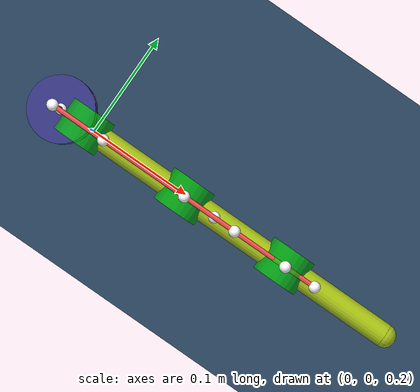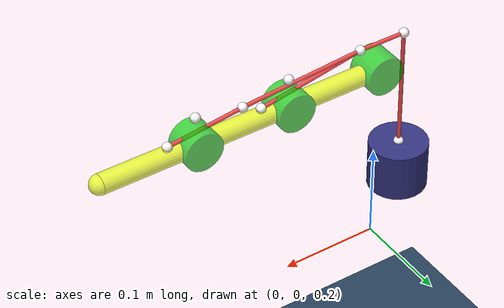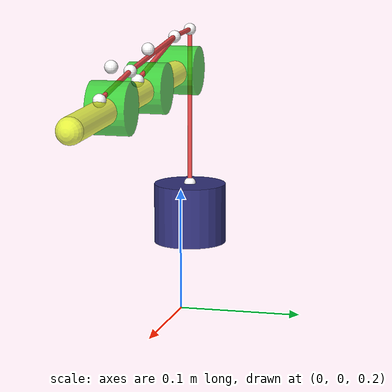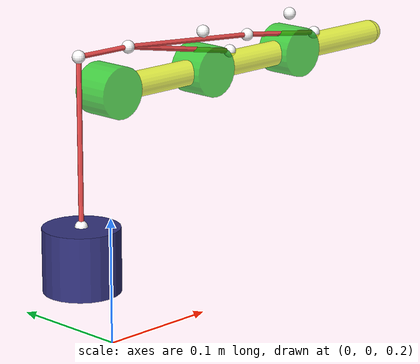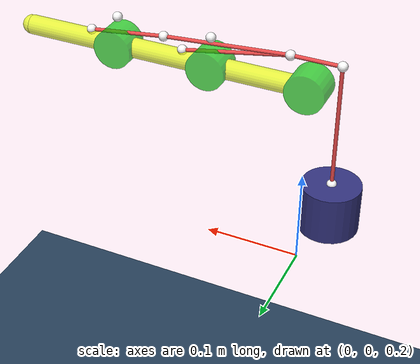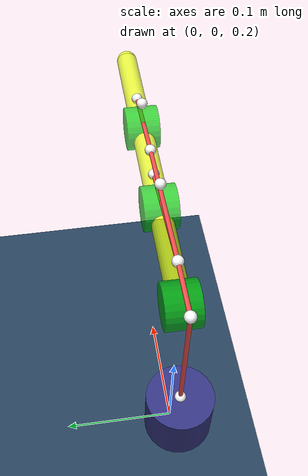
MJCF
<mujoco model="Tendon scene">
  <include file="finger.mujoco.xml" />

  <option gravity="0 0 -9.81" timestep="0.002" />

  <extension>
    <plugin plugin="mujoco_ros2_control::MujocoRos2ControlPlugin" />
  </extension>

  <visual>
    <headlight diffuse="0.6 0.6 0.6" ambient="0.3 0.3 0.3" specular="0 0 0" />
    <rgba haze="0.15 0.25 0.35 1" />
    <global azimuth="160" elevation="-20" />
  </visual>

  <default>
    <geom condim="3" conaffinity="1" contype="1" />
    <joint limited="true" stiffness="0.1" armature="0.1" damping="0.1" />
    <motor ctrllimited="true" ctrlrange="-100.0 100.0" />
  </default>

  <asset>
    <texture type="skybox" builtin="gradient" rgb1="0.3 0.5 0.7" rgb2="0 0 0" width="512"
      height="3072" />
    <texture type="2d" name="groundplane" builtin="checker" mark="edge" rgb1="0.2 0.3 0.4"
      rgb2="0.1 0.2 0.3"
      markrgb="0.8 0.8 0.8" width="300" height="300" />
    <material name="groundplane" texture="groundplane" texuniform="true" texrepeat="5 5"
      reflectance="0.2" />
  </asset>

  <worldbody>
    <light pos="0 0 3.5" dir="0 0 -1" directional="true" />
    <geom name="floor" size="0 0 0.05" type="plane" material="groundplane" />
    <plugin plugin="mujoco_ros2_control::MujocoRos2ControlPlugin" />
  </worldbody>

  <tendon>
    <spatial range="0 .33" limited="true" width=".002" rgba=".95 .3 .3 1">
      <site site="tendon_site1" />
      <site site="base_site1" />
      <geom geom="mcp_link_col" />
      <site site="mcp_site1" />

      <pulley divisor="2" />
      <site site="mcp_site1" />
      <geom geom="pip_link_col" sidesite="pip_site3" />
      <site site="pip_site1" />

      <pulley divisor="2" />
      <site site="mcp_site1" />
      <geom geom="pip_link_col" sidesite="pip_site3" />
      <site site="pip_site2" />
      <geom geom="dip_link_col" sidesite="dip_site1" />
      <site site="dip_site1" />
    </spatial>
  </tendon>

</mujoco>

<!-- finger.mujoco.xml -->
<mujoco model="tendon">
  <compiler angle="radian" meshdir="../meshes/finger/visual/" texturedir="../textures/"/>

  <option timestep="0.001"/>

  <worldbody>
    <body name="base_link">
      <body name="base_site1_link" pos="-0.03 0 0.43">
        <inertial pos="0 0 0" quat="0.5 0.5 -0.5 0.5" mass="1e-05" diaginertia="1.25e-10 8.33333e-11 8.33333e-11"/>
        <geom name="base_site1_link_vis" size="0.005" contype="0" conaffinity="0" group="1" density="0" rgba="1 1 1 1"/>
        <geom name="base_site1_link_col" size="0.005" rgba="1 1 1 1"/>
        <site name="base_site1" pos="0 0 0"/>
      </body>
      <body name="tendon_link" pos="-0.03 0 0.3" quat="0.707107 0 -0.707107 0">
        <inertial pos="-0.025 0 0" quat="0.5 0.5 -0.5 0.5" mass="0.5" diaginertia="0.000225 0.000216667 0.000216667"/>
        <joint name="tendon_joint" pos="0 0 0" axis="1 0 0" type="slide" range="-0.01 0.10472" actuatorfrcrange="-100 100" damping="0.003" frictionloss="0.2"/>
        <geom name="tendon_link_vis" size="0.03 0.025" pos="-0.025 0 0" quat="0.707107 0 0.707107 0" type="cylinder" contype="0" conaffinity="0" group="1" density="0" rgba="0.2 0.2 0.5 1"/>
        <geom name="tendon_link_col" size="0.03 0.025" pos="-0.025 0 0" quat="0.707107 0 0.707107 0" type="cylinder" rgba="0.2 0.2 0.5 1"/>
        <body name="tendon_site1_link">
          <inertial pos="0 0 0" quat="0.5 0.5 -0.5 0.5" mass="1e-05" diaginertia="1.25e-10 8.33333e-11 8.33333e-11"/>
          <geom name="tendon_site1_link_vis" size="0.005" contype="0" conaffinity="0" group="1" density="0" rgba="1 1 1 1"/>
          <geom name="tendon_site1_link_col" size="0.005" rgba="1 1 1 1"/>
          <site name="tendon_site1" pos="0 0 0"/>
        </body>
      </body>
      <body name="mcp_link" pos="0 0 0.4" quat="0.707107 0 0 0.707107">
        <inertial pos="0 0 0" quat="0.5 0.5 -0.5 0.5" mass="0.1" diaginertia="2e-05 1.75e-05 1.75e-05"/>
        <joint name="mcp_joint" pos="0 0 0" axis="1 0 0" range="-0.174533 1.13446" actuatorfrcrange="-10 10" damping="0.003" frictionloss="0.2"/>
        <geom name="mcp_link_vis" size="0.02 0.015" quat="0.707107 0 0.707107 0" type="cylinder" contype="0" conaffinity="0" group="1" density="0" rgba="0 0.8 0 0.7"/>
        <geom name="mcp_link_col" size="0.02 0.015" quat="0.707107 0 0.707107 0" type="cylinder" rgba="0 0.8 0 0.7"/>
        <body name="mcp_bar_linkage_link" quat="0.707107 0.707107 0 0">
          <inertial pos="0 0 0.05" mass="0.1" diaginertia="8.58333e-05 8.58333e-05 5e-06"/>
          <geom name="mcp_bar_linkage_link_part1_vis" size="0.01 0.05" pos="0 0 0.05" type="cylinder" contype="0" conaffinity="0" group="1" density="0" rgba="0.9 1 0 0.7"/>
          <geom name="mcp_bar_linkage_link_part2_vis" size="0.01" pos="0 0 0.1" contype="0" conaffinity="0" group="1" density="0" rgba="0.9 1 0 0.7"/>
          <geom name="mcp_bar_linkage_link_part3_vis" size="0.01" contype="0" conaffinity="0" group="1" density="0" rgba="0.9 1 0 0.7"/>
          <geom name="mcp_bar_linkage_link_part1_col" size="0.01 0.05" pos="0 0 0.05" type="cylinder" rgba="0.9 1 0 0.7"/>
          <geom name="mcp_bar_linkage_link_part2_col" size="0.01" pos="0 0 0.1" rgba="0.9 1 0 0.7"/>
          <geom name="mcp_bar_linkage_link_part3_col" size="0.01" rgba="0.9 1 0 0.7"/>
        </body>
        <body name="mcp_site1_link" pos="0 -0.02 0.03" quat="0.707107 0 0 -0.707107">
          <inertial pos="0 0 0" quat="0.5 0.5 -0.5 0.5" mass="1e-05" diaginertia="1.25e-10 8.33333e-11 8.33333e-11"/>
          <geom name="mcp_site1_link_vis" size="0.005" contype="0" conaffinity="0" group="1" density="0" rgba="1 1 1 1"/>
          <geom name="mcp_site1_link_col" size="0.005" rgba="1 1 1 1"/>
          <site name="mcp_site1" pos="0 0 0"/>
        </body>
        <body name="pip_link" pos="0 -0.1 0">
          <inertial pos="0 0 0" quat="0.5 0.5 -0.5 0.5" mass="0.1" diaginertia="2e-05 1.75e-05 1.75e-05"/>
          <joint name="pip_joint" pos="0 0 0" axis="1 0 0" range="-0.174533 1.13446" actuatorfrcrange="-10 10" damping="0.003" frictionloss="0.2"/>
          <geom name="pip_link_vis" size="0.02 0.015" quat="0.707107 0 0.707107 0" type="cylinder" contype="0" conaffinity="0" group="1" density="0" rgba="0 0.8 0 0.7"/>
          <geom name="pip_link_col" size="0.02 0.015" quat="0.707107 0 0.707107 0" type="cylinder" rgba="0 0.8 0 0.7"/>
          <body name="pip_bar_linkage_link" quat="0.707107 0.707107 0 0">
            <inertial pos="0 0 0.05" mass="0.1" diaginertia="8.58333e-05 8.58333e-05 5e-06"/>
            <geom name="pip_bar_linkage_link_part1_vis" size="0.01 0.05" pos="0 0 0.05" type="cylinder" contype="0" conaffinity="0" group="1" density="0" rgba="0.9 1 0 0.7"/>
            <geom name="pip_bar_linkage_link_part2_vis" size="0.01" pos="0 0 0.1" contype="0" conaffinity="0" group="1" density="0" rgba="0.9 1 0 0.7"/>
            <geom name="pip_bar_linkage_link_part3_vis" size="0.01" contype="0" conaffinity="0" group="1" density="0" rgba="0.9 1 0 0.7"/>
            <geom name="pip_bar_linkage_link_part1_col" size="0.01 0.05" pos="0 0 0.05" type="cylinder" rgba="0.9 1 0 0.7"/>
            <geom name="pip_bar_linkage_link_part2_col" size="0.01" pos="0 0 0.1" rgba="0.9 1 0 0.7"/>
            <geom name="pip_bar_linkage_link_part3_col" size="0.01" rgba="0.9 1 0 0.7"/>
          </body>
          <body name="pip_site1_link" pos="0 -0.03 0.01" quat="0.707107 0 0 -0.707107">
            <inertial pos="0 0 0" quat="0.5 0.5 -0.5 0.5" mass="1e-05" diaginertia="1.25e-10 8.33333e-11 8.33333e-11"/>
            <geom name="pip_site1_link_vis" size="0.005" contype="0" conaffinity="0" group="1" density="0" rgba="1 1 1 1"/>
            <geom name="pip_site1_link_col" size="0.005" rgba="1 1 1 1"/>
            <site name="pip_site1" pos="0 0 0"/>
          </body>
          <body name="pip_site2_link" pos="0 -0.05 0.02" quat="0.707107 0 0 -0.707107">
            <inertial pos="0 0 0" quat="0.5 0.5 -0.5 0.5" mass="1e-05" diaginertia="1.25e-10 8.33333e-11 8.33333e-11"/>
            <geom name="pip_site2_link_vis" size="0.005" contype="0" conaffinity="0" group="1" density="0" rgba="1 1 1 1"/>
            <geom name="pip_site2_link_col" size="0.005" rgba="1 1 1 1"/>
            <site name="pip_site2" pos="0 0 0"/>
          </body>
          <body name="pip_site3_link" pos="0 0 0.03" quat="0.707107 0 0 -0.707107">
            <inertial pos="0 0 0" quat="0.5 0.5 -0.5 0.5" mass="1e-05" diaginertia="1.25e-10 8.33333e-11 8.33333e-11"/>
            <geom name="pip_site3_link_vis" size="0.005" contype="0" conaffinity="0" group="1" density="0" rgba="1 1 1 1"/>
            <geom name="pip_site3_link_col" size="0.005" rgba="1 1 1 1"/>
            <site name="pip_site3" pos="0 0 0"/>
          </body>
          <body name="dip_link" pos="0 -0.1 0">
            <inertial pos="0 0 0" quat="0.5 0.5 -0.5 0.5" mass="0.1" diaginertia="2e-05 1.75e-05 1.75e-05"/>
            <joint name="dip_joint" pos="0 0 0" axis="1 0 0" range="-0.174533 1.13446" actuatorfrcrange="-10 10" damping="0.003" frictionloss="0.2"/>
            <geom name="dip_link_vis" size="0.02 0.015" quat="0.707107 0 0.707107 0" type="cylinder" contype="0" conaffinity="0" group="1" density="0" rgba="0 0.8 0 0.7"/>
            <geom name="dip_link_col" size="0.02 0.015" quat="0.707107 0 0.707107 0" type="cylinder" rgba="0 0.8 0 0.7"/>
            <body name="dip_bar_linkage_link" quat="0.707107 0.707107 0 0">
              <inertial pos="0 0 0.05" mass="0.1" diaginertia="8.58333e-05 8.58333e-05 5e-06"/>
              <geom name="dip_bar_linkage_link_part1_vis" size="0.01 0.05" pos="0 0 0.05" type="cylinder" contype="0" conaffinity="0" group="1" density="0" rgba="0.9 1 0 0.7"/>
              <geom name="dip_bar_linkage_link_part2_vis" size="0.01" pos="0 0 0.1" contype="0" conaffinity="0" group="1" density="0" rgba="0.9 1 0 0.7"/>
              <geom name="dip_bar_linkage_link_part3_vis" size="0.01" contype="0" conaffinity="0" group="1" density="0" rgba="0.9 1 0 0.7"/>
              <geom name="dip_bar_linkage_link_part1_col" size="0.01 0.05" pos="0 0 0.05" type="cylinder" rgba="0.9 1 0 0.7"/>
              <geom name="dip_bar_linkage_link_part2_col" size="0.01" pos="0 0 0.1" rgba="0.9 1 0 0.7"/>
              <geom name="dip_bar_linkage_link_part3_col" size="0.01" rgba="0.9 1 0 0.7"/>
            </body>
            <body name="dip_site1_link" pos="0 -0.03 0.01" quat="0.707107 0 0 -0.707107">
              <inertial pos="0 0 0" quat="0.5 0.5 -0.5 0.5" mass="1e-05" diaginertia="1.25e-10 8.33333e-11 8.33333e-11"/>
              <geom name="dip_site1_link_vis" size="0.005" contype="0" conaffinity="0" group="1" density="0" rgba="1 1 1 1"/>
              <geom name="dip_site1_link_col" size="0.005" rgba="1 1 1 1"/>
              <site name="dip_site1" pos="0 0 0"/>
            </body>
            <body name="dip_site2_link" pos="0 0 0.03" quat="0.707107 0 0 -0.707107">
              <inertial pos="0 0 0" quat="0.5 0.5 -0.5 0.5" mass="1e-05" diaginertia="1.25e-10 8.33333e-11 8.33333e-11"/>
              <geom name="dip_site2_link_vis" size="0.005" contype="0" conaffinity="0" group="1" density="0" rgba="1 1 1 1"/>
              <geom name="dip_site2_link_col" size="0.005" rgba="1 1 1 1"/>
              <site name="dip_site2" pos="0 0 0"/>
            </body>
          </body>
        </body>
      </body>
    </body>
  </worldbody>

  <actuator>
    <general name="tendon_actuator" joint="tendon_joint" ctrlrange="-100 100"/>
    <general name="mcp_actuator" joint="mcp_joint" ctrlrange="-10 10"/>
    <general name="pip_actuator" joint="pip_joint" ctrlrange="-10 10"/>
    <general name="dip_actuator" joint="dip_joint" ctrlrange="-10 10"/>
  </actuator>
</mujoco>
